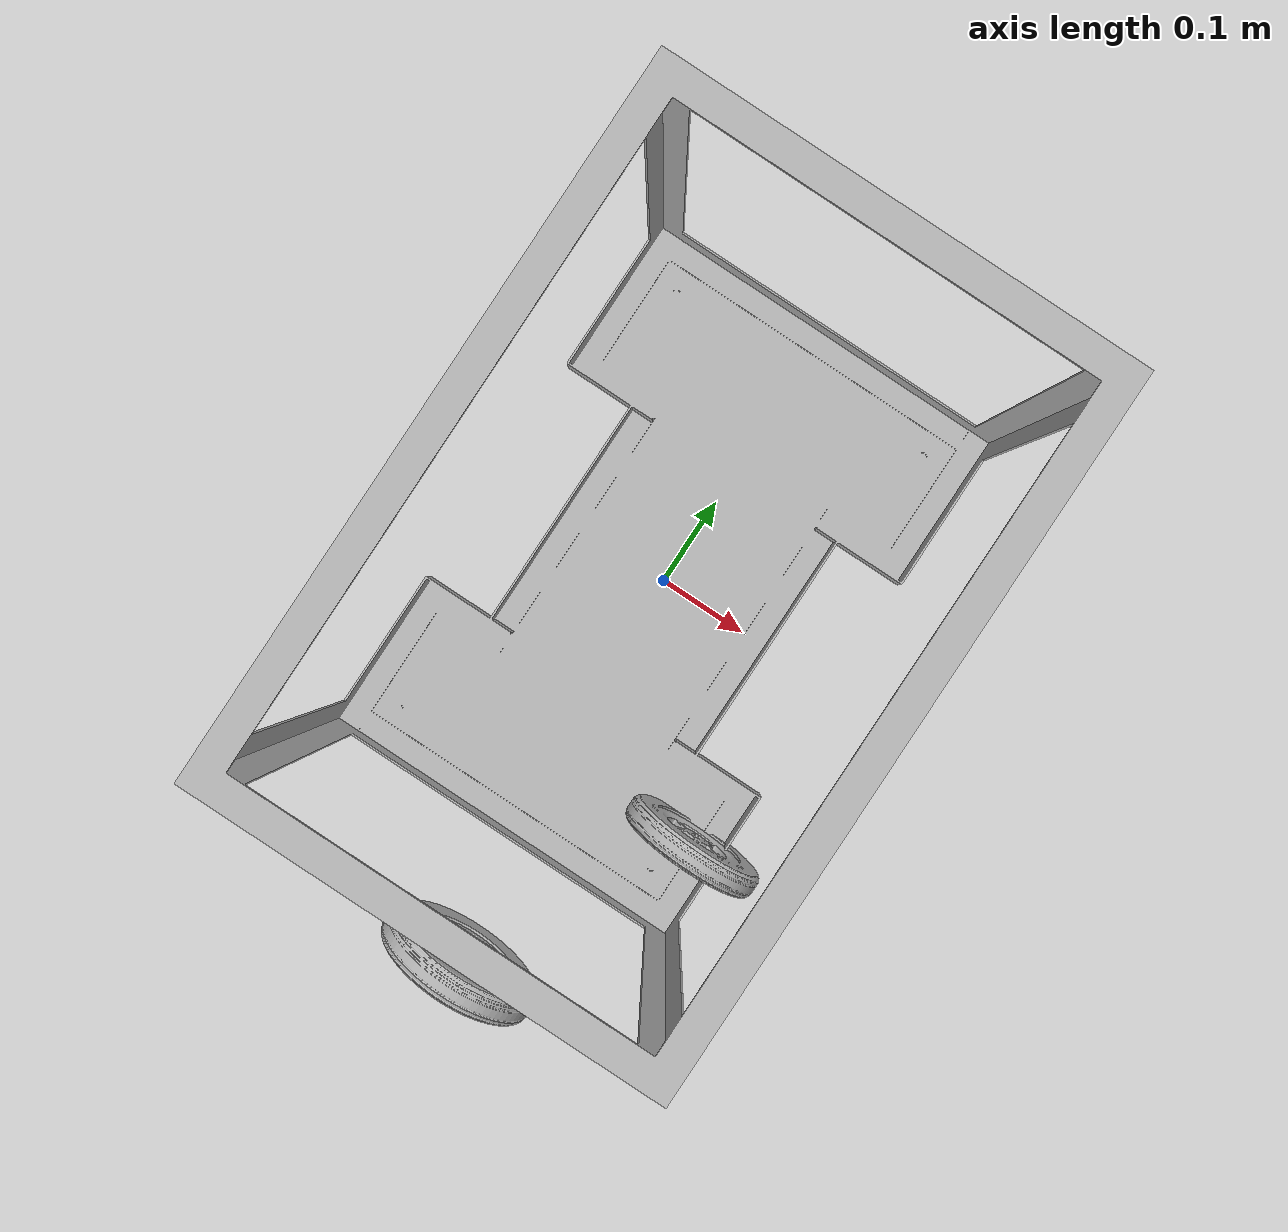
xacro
<?xml version="1.0" ?>
<robot name="sentry" xmlns:xacro="http://www.ros.org/wiki/xacro">

<xacro:include filename="$(find sentry_description)/urdf/materials.xacro" />
<xacro:include filename="$(find sentry_description)/urdf/sentry.trans" />
<xacro:include filename="$(find sentry_description)/urdf/sentry.gazebo" />

<link name="base_link">
  <inertial>
    <origin rpy="0 0 0" xyz="0 0 0"/>
    <mass value="98.47956252925857"/>
    <inertia ixx="2.141143" ixy="-0.0" ixz="0.0" iyy="0.596002" iyz="0.003043" izz="2.571777"/>
  </inertial>
  <visual>
    <origin rpy="0 0 0" xyz="0 0 0"/>
    <geometry>
      <mesh filename="package://sentry_description/meshes/base_link.stl" scale="0.001 0.001 0.001"/>
    </geometry>
    <material name="silver"/>
  </visual>
  <collision>
    <origin rpy="0 0 0" xyz="0 0 0"/>
    <geometry>
      <mesh filename="package://sentry_description/meshes/base_link.stl" scale="0.001 0.001 0.001"/>
    </geometry>
  </collision>
</link>

<link name="wheel_1">
  <inertial>
    <origin rpy="0 0 0" xyz="0 0 0"/>
    <mass value="0.5441781170129456"/>
    <inertia ixx="0.001218" ixy="-0.0" ixz="0.0" iyy="0.000635" iyz="-0.0" izz="0.000635"/>
  </inertial>
  <visual>
    <origin rpy="0 0 0" xyz="0 0 0"/>
    <geometry>
      <mesh filename="package://sentry_description/meshes/wheel_1.stl" scale="0.001 0.001 0.001"/>
    </geometry>
    <material name="silver"/>
  </visual>
  <collision>
    <origin rpy="0 0 0" xyz="0 0 0"/>
    <geometry>
      <mesh filename="package://sentry_description/meshes/wheel_1.stl" scale="0.001 0.001 0.001"/>
    </geometry>
  </collision>
</link>

<link name="wheel_2">
  <inertial>
    <origin rpy="0 0 0" xyz="0 0 0"/>
    <mass value="0.5441781170129456"/>
    <inertia ixx="0.001218" ixy="0.0" ixz="0.0" iyy="0.000635" iyz="0.0" izz="0.000635"/>
  </inertial>
  <visual>
    <origin rpy="0 0 0" xyz="0 0 0"/>
    <geometry>
      <mesh filename="package://sentry_description/meshes/wheel_2.stl" scale="0.001 0.001 0.001"/>
    </geometry>
    <material name="silver"/>
  </visual>
  <collision>
    <origin rpy="0 0 0" xyz="0 0 0"/>
    <geometry>
      <mesh filename="package://sentry_description/meshes/wheel_2.stl" scale="0.001 0.001 0.001"/>
    </geometry>
  </collision>
</link>

<joint name="left_wheel_joint" type="continuous">
  <origin rpy="0 0 1.57" xyz="-0.165575 -0.20000099435655025 0.109"/>
  <parent link="base_link"/>
  <child link="wheel_1"/>
  <axis xyz="1.0 0.0 0.0"/>
</joint>

<joint name="right_wheel_joint" type="continuous">
  <origin rpy="0 0 1.57" xyz="0.165575 -0.20000099435655025 .109"/>
  <parent link="base_link"/>
  <child link="wheel_2"/>
  <axis xyz="1.0 0.0 0.0"/>
</joint>

</robot>

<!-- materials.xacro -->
<robot name="sentry" xmlns:xacro="http://www.ros.org/wiki/xacro" >

<material name="silver">
  <color rgba="0.700 0.700 0.700 1.000"/>
</material>

</robot>

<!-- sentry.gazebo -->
<robot name="sentry" xmlns:xacro="http://www.ros.org/wiki/xacro" >

<xacro:property name="body_color" value="Gazebo/Silver" />

<gazebo>
  <plugin filename="libgazebo_ros_control.so" name="control"/>
</gazebo>
<gazebo reference="base_link">
  <material>${body_color}</material>
  <mu1>0.2</mu1>
  <mu2>0.2</mu2>
  <selfCollide>true</selfCollide>
  <gravity>true</gravity>
</gazebo>

<gazebo reference="wheel_1">
  <material>${body_color}</material>
  <mu1>0.2</mu1>
  <mu2>0.2</mu2>
  <selfCollide>true</selfCollide>
</gazebo>

<gazebo reference="wheel_2">
  <material>${body_color}</material>
  <mu1>0.2</mu1>
  <mu2>0.2</mu2>
  <selfCollide>true</selfCollide>
</gazebo>

</robot>
